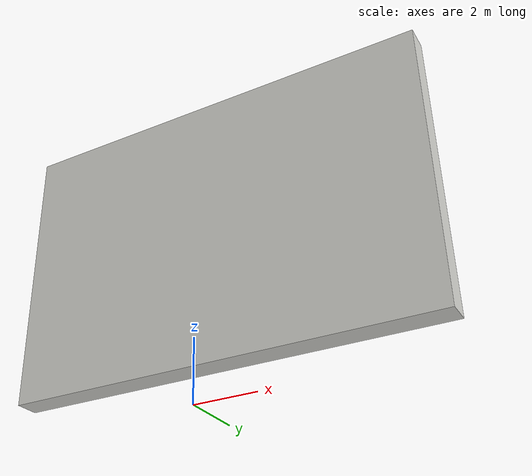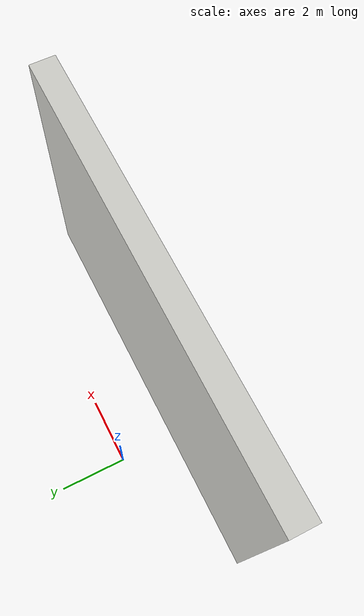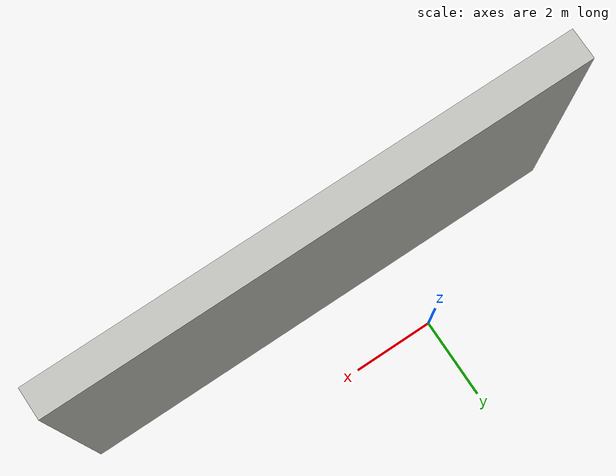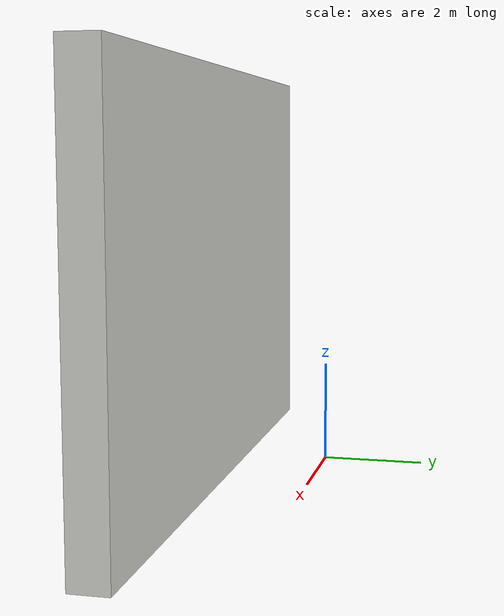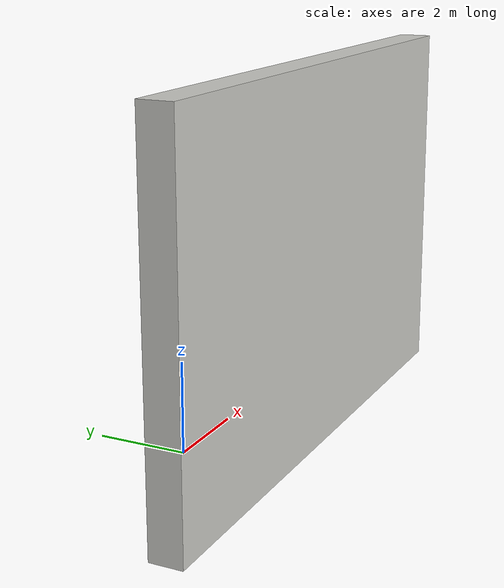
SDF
<?xml version='1.0'?>
<sdf version='1.7'>
  <model name='wall_12x8'>
    <pose>1.91467 -1.1845 0 0 -0 0</pose>
    <link name='Wall_0'>
      <collision name='Wall_0_Collision'>
        <geometry>
          <box>
            <size>12.2 0.7 8</size>
          </box>
        </geometry>
        <pose>0 0 4 0 -0 0</pose>
      </collision>
      <visual name='Wall_0_Visual'>
        <pose>0 0 4 0 -0 0</pose>
        <geometry>
          <box>
            <size>12.2 0.7 8</size>
          </box>
        </geometry>
        <material>
          <script>
            <uri>file://media/materials/scripts/gazebo.material</uri>
            <name>Gazebo/CeilingTiled</name>
          </script>
          <ambient>1 1 1 1</ambient>
        </material>
        <meta>
          <layer>0</layer>
        </meta>
      </visual>
      <pose>-0 -0.8345 0 0 -0 0</pose>
    </link>
    <static>1</static>
  </model>
</sdf>
